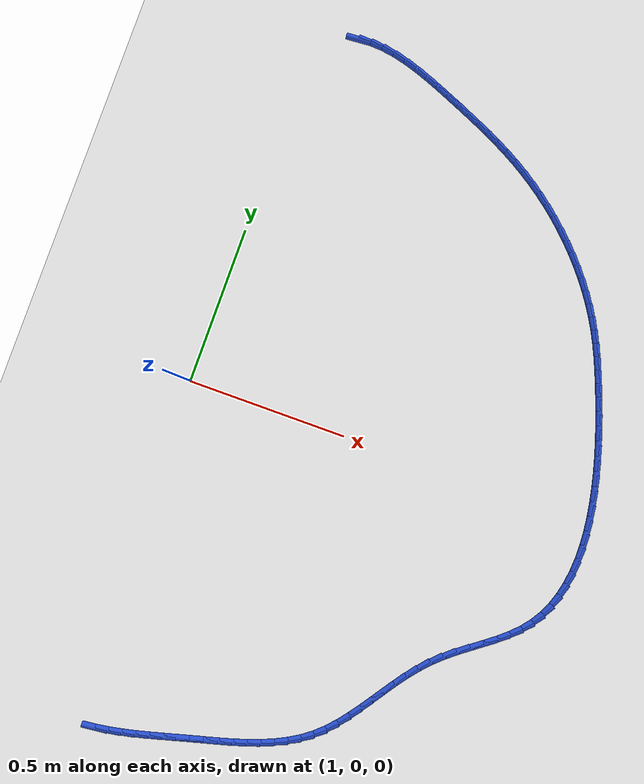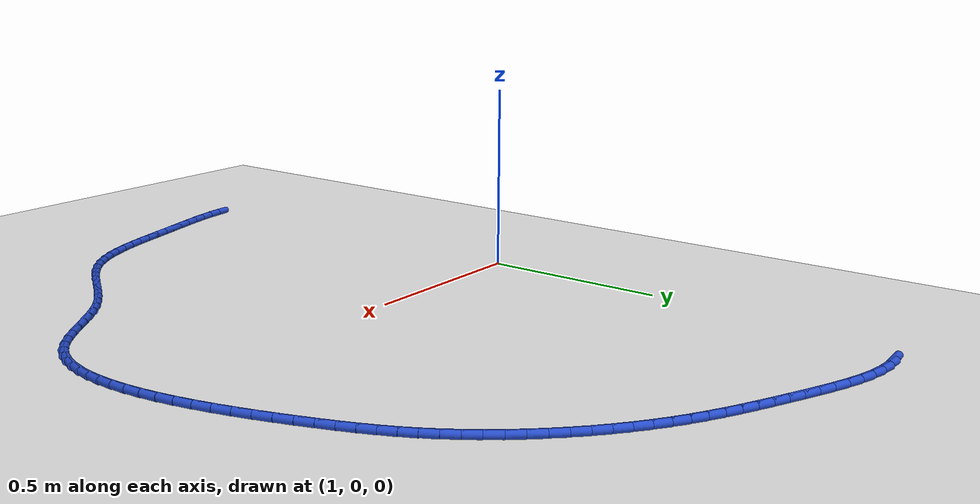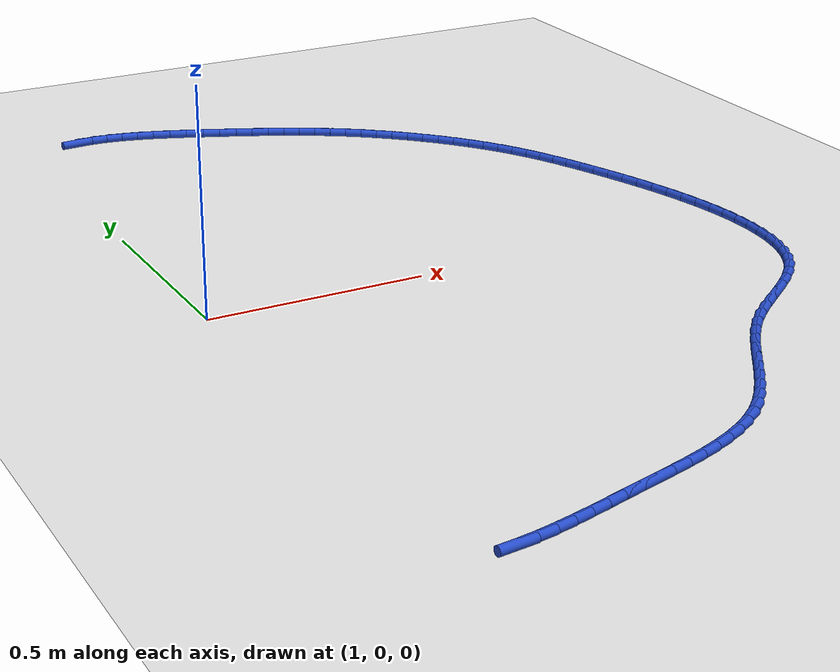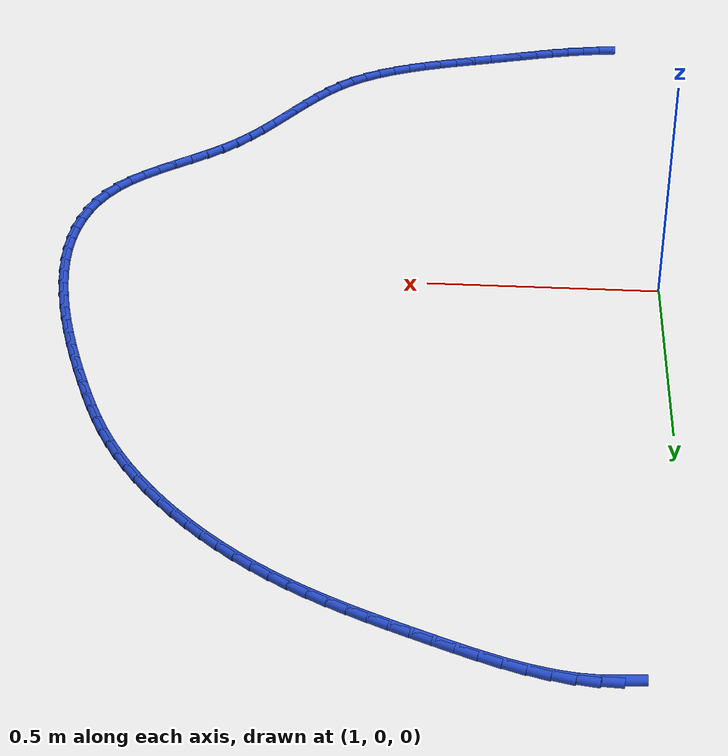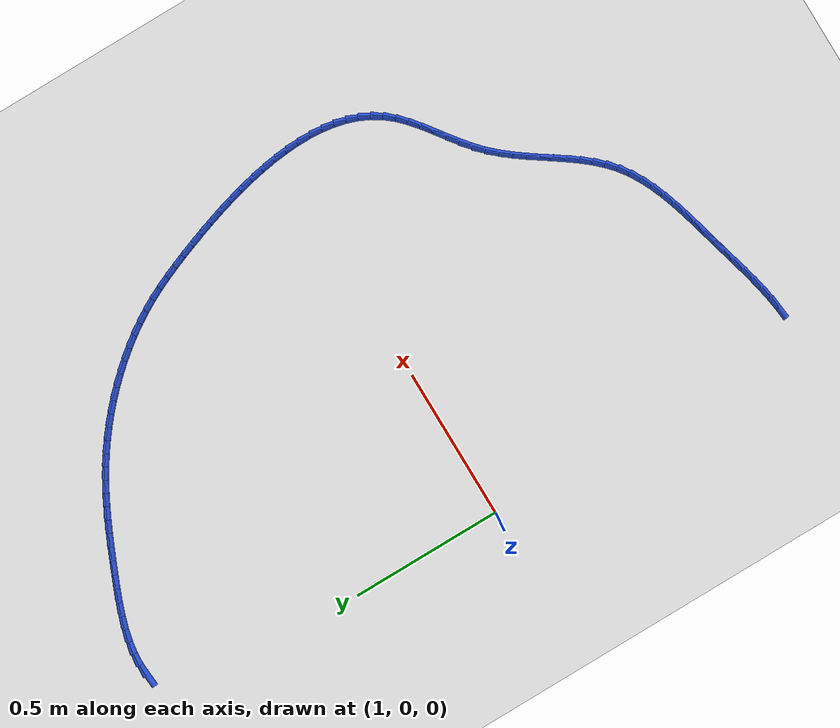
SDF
<sdf version="1.6">
 <world name="default">
  <model name="ground_plane">
   <static>1</static>
   <link name="link">
    <collision name="collision">
     <geometry><plane><normal>0 0 1</normal><size>100 100</size></plane></geometry>
     <surface><friction><ode><mu>100</mu><mu2>50</mu2></ode></friction></surface>
    </collision>
    <visual name="visual">
     <cast_shadows>0</cast_shadows>
     <geometry><plane><normal>0 0 1</normal><size>100 100</size></plane></geometry>
     <material>
      <script><uri>file://media/materials/scripts/gazebo.material</uri><name>Gazebo/WhiteGlow</name></script>
     </material>
    </visual>
   </link>
  </model>
  <model name="line">
   <link name="link_44">
    <pose>1.127255780302199 1.1821096388863792 0.01 0 1.57 0.06854633437691574</pose>
    <collision name="collision">
     <geometry><cylinder><radius>0.01</radius><length>0.08</length></cylinder></geometry>
    </collision>
    <visual name="visual">
     <material>
      <script><name>Gazebo/Blue</name><uri>file://media/materials/scripts/gazebo.material</uri></script>
     </material>
     <geometry><cylinder><radius>0.01</radius><length>0.08</length></cylinder></geometry>
    </visual>
   </link>
   <link name="link_45">
    <pose>1.1661969894721655 1.18478310452521 0.01 0 1.57 -0.05509741451226116</pose>
    <collision name="collision">
     <geometry><cylinder><radius>0.01</radius><length>0.08</length></cylinder></geometry>
    </collision>
    <visual name="visual">
     <material>
      <script><name>Gazebo/Blue</name><uri>file://media/materials/scripts/gazebo.material</uri></script>
     </material>
     <geometry><cylinder><radius>0.01</radius><length>0.08</length></cylinder></geometry>
    </visual>
   </link>
   <link name="link_46">
    <pose>1.20599255363776 1.182588250389758 0.01 0 1.57 -0.15627035638043646</pose>
    <collision name="collision">
     <geometry><cylinder><radius>0.01</radius><length>0.08</length></cylinder></geometry>
    </collision>
    <visual name="visual">
     <material>
      <script><name>Gazebo/Blue</name><uri>file://media/materials/scripts/gazebo.material</uri></script>
     </material>
     <geometry><cylinder><radius>0.01</radius><length>0.08</length></cylinder></geometry>
    </visual>
   </link>
   <link name="link_47">
    <pose>1.2464213542993945 1.1762184919565535 0.01 0 1.57 -0.23668898038604896</pose>
    <collision name="collision">
     <geometry><cylinder><radius>0.01</radius><length>0.08</length></cylinder></geometry>
    </collision>
    <visual name="visual">
     <material>
      <script><name>Gazebo/Blue</name><uri>file://media/materials/scripts/gazebo.material</uri></script>
     </material>
     <geometry><cylinder><radius>0.01</radius><length>0.08</length></cylinder></geometry>
    </visual>
   </link>
   <link name="link_48">
    <pose>1.2872622729574785 1.1663672447021258 0.01 0 1.57 -0.29881315057976904</pose>
    <collision name="collision">
     <geometry><cylinder><radius>0.01</radius><length>0.08</length></cylinder></geometry>
    </collision>
    <visual name="visual">
     <material>
      <script><name>Gazebo/Blue</name><uri>file://media/materials/scripts/gazebo.material</uri></script>
     </material>
     <geometry><cylinder><radius>0.01</radius><length>0.08</length></cylinder></geometry>
    </visual>
   </link>
   <link name="link_49">
    <pose>1.328294191112424 1.1537279241030047 0.01 0 1.57 -0.34497964643754225</pose>
    <collision name="collision">
     <geometry><cylinder><radius>0.01</radius><length>0.08</length></cylinder></geometry>
    </collision>
    <visual name="visual">
     <material>
      <script><name>Gazebo/Blue</name><uri>file://media/materials/scripts/gazebo.material</uri></script>
     </material>
     <geometry><cylinder><radius>0.01</radius><length>0.08</length></cylinder></geometry>
    </visual>
   </link>
   <link name="link_50">
    <pose>1.3692959902646415 1.1389939456357197 0.01 0 1.57 -0.37701089247184477</pose>
    <collision name="collision">
     <geometry><cylinder><radius>0.01</radius><length>0.08</length></cylinder></geometry>
    </collision>
    <visual name="visual">
     <material>
      <script><name>Gazebo/Blue</name><uri>file://media/materials/scripts/gazebo.material</uri></script>
     </material>
     <geometry><cylinder><radius>0.01</radius><length>0.08</length></cylinder></geometry>
    </visual>
   </link>
   <link name="link_51">
    <pose>1.4100465519145418 1.1228587247768016 0.01 0 1.57 -0.396069491498876</pose>
    <collision name="collision">
     <geometry><cylinder><radius>0.01</radius><length>0.08</length></cylinder></geometry>
    </collision>
    <visual name="visual">
     <material>
      <script><name>Gazebo/Blue</name><uri>file://media/materials/scripts/gazebo.material</uri></script>
     </material>
     <geometry><cylinder><radius>0.01</radius><length>0.08</length></cylinder></geometry>
    </visual>
   </link>
   <link name="link_52">
    <pose>1.4503247575625364 1.1060156770027791 0.01 0 1.57 -0.4037262229836692</pose>
    <collision name="collision">
     <geometry><cylinder><radius>0.01</radius><length>0.08</length></cylinder></geometry>
    </collision>
    <visual name="visual">
     <material>
      <script><name>Gazebo/Blue</name><uri>file://media/materials/scripts/gazebo.material</uri></script>
     </material>
     <geometry><cylinder><radius>0.01</radius><length>0.08</length></cylinder></geometry>
    </visual>
   </link>
   <link name="link_53">
    <pose>1.4899256579240476 1.0890984705465996 0.01 0 1.57 -0.41035904107302573</pose>
    <collision name="collision">
     <geometry><cylinder><radius>0.01</radius><length>0.08</length></cylinder></geometry>
    </collision>
    <visual name="visual">
     <material>
      <script><name>Gazebo/Blue</name><uri>file://media/materials/scripts/gazebo.material</uri></script>
     </material>
     <geometry><cylinder><radius>0.01</radius><length>0.08</length></cylinder></geometry>
    </visual>
   </link>
   <link name="link_54">
    <pose>1.5287937378391696 1.0721885961211908 0.01 0 1.57 -0.42170604757677266</pose>
    <collision name="collision">
     <geometry><cylinder><radius>0.01</radius><length>0.08</length></cylinder></geometry>
    </collision>
    <visual name="visual">
     <material>
      <script><name>Gazebo/Blue</name><uri>file://media/materials/scripts/gazebo.material</uri></script>
     </material>
     <geometry><cylinder><radius>0.01</radius><length>0.08</length></cylinder></geometry>
    </visual>
   </link>
   <link name="link_55">
    <pose>1.566954276156908 1.0550690006124168 0.01 0 1.57 -0.4379204622202308</pose>
    <collision name="collision">
     <geometry><cylinder><radius>0.01</radius><length>0.08</length></cylinder></geometry>
    </collision>
    <visual name="visual">
     <material>
      <script><name>Gazebo/Blue</name><uri>file://media/materials/scripts/gazebo.material</uri></script>
     </material>
     <geometry><cylinder><radius>0.01</radius><length>0.08</length></cylinder></geometry>
    </visual>
   </link>
   <link name="link_56">
    <pose>1.6044333433577622 1.037519705730133 0.01 0 1.57 -0.459012491445624</pose>
    <collision name="collision">
     <geometry><cylinder><radius>0.01</radius><length>0.08</length></cylinder></geometry>
    </collision>
    <visual name="visual">
     <material>
      <script><name>Gazebo/Blue</name><uri>file://media/materials/scripts/gazebo.material</uri></script>
     </material>
     <geometry><cylinder><radius>0.01</radius><length>0.08</length></cylinder></geometry>
    </visual>
   </link>
   <link name="link_57">
    <pose>1.6412570099222341 1.0193207331841945 0.01 0 1.57 -0.4848884323864052</pose>
    <collision name="collision">
     <geometry><cylinder><radius>0.01</radius><length>0.08</length></cylinder></geometry>
    </collision>
    <visual name="visual">
     <material>
      <script><name>Gazebo/Blue</name><uri>file://media/materials/scripts/gazebo.material</uri></script>
     </material>
     <geometry><cylinder><radius>0.01</radius><length>0.08</length></cylinder></geometry>
    </visual>
   </link>
   <link name="link_58">
    <pose>1.6774513463308263 1.000252104684457 0.01 0 1.57 -0.5153360059701494</pose>
    <collision name="collision">
     <geometry><cylinder><radius>0.01</radius><length>0.08</length></cylinder></geometry>
    </collision>
    <visual name="visual">
     <material>
      <script><name>Gazebo/Blue</name><uri>file://media/materials/scripts/gazebo.material</uri></script>
     </material>
     <geometry><cylinder><radius>0.01</radius><length>0.08</length></cylinder></geometry>
    </visual>
   </link>
   <link name="link_59">
    <pose>1.713042423064037 0.9800938419407756 0.01 0 1.57 -0.550014079441732</pose>
    <collision name="collision">
     <geometry><cylinder><radius>0.01</radius><length>0.08</length></cylinder></geometry>
    </collision>
    <visual name="visual">
     <material>
      <script><name>Gazebo/Blue</name><uri>file://media/materials/scripts/gazebo.material</uri></script>
     </material>
     <geometry><cylinder><radius>0.01</radius><length>0.08</length></cylinder></geometry>
    </visual>
   </link>
   <link name="link_60">
    <pose>1.7480563106023688 0.9586259666630057 0.01 0 1.57 -0.5879182547053827</pose>
    <collision name="collision">
     <geometry><cylinder><radius>0.01</radius><length>0.08</length></cylinder></geometry>
    </collision>
    <visual name="visual">
     <material>
      <script><name>Gazebo/Blue</name><uri>file://media/materials/scripts/gazebo.material</uri></script>
     </material>
     <geometry><cylinder><radius>0.01</radius><length>0.08</length></cylinder></geometry>
    </visual>
   </link>
   <link name="link_61">
    <pose>1.7825024693280276 0.9356660574340228 0.01 0 1.57 -0.6260137774116261</pose>
    <collision name="collision">
     <geometry><cylinder><radius>0.01</radius><length>0.08</length></cylinder></geometry>
    </collision>
    <visual name="visual">
     <material>
      <script><name>Gazebo/Blue</name><uri>file://media/materials/scripts/gazebo.material</uri></script>
     </material>
     <geometry><cylinder><radius>0.01</radius><length>0.08</length></cylinder></geometry>
    </visual>
   </link>
   <link name="link_62">
    <pose>1.8163042102024922 0.9112264841496295 0.01 0 1.57 -0.663605238005424</pose>
    <collision name="collision">
     <geometry><cylinder><radius>0.01</radius><length>0.08</length></cylinder></geometry>
    </collision>
    <visual name="visual">
     <material>
      <script><name>Gazebo/Blue</name><uri>file://media/materials/scripts/gazebo.material</uri></script>
     </material>
     <geometry><cylinder><radius>0.01</radius><length>0.08</length></cylinder></geometry>
    </visual>
   </link>
   <link name="link_63">
    <pose>1.84935699972535 0.8853825754492208 0.01 0 1.57 -0.7009402538940767</pose>
    <collision name="collision">
     <geometry><cylinder><radius>0.01</radius><length>0.08</length></cylinder></geometry>
    </collision>
    <visual name="visual">
     <material>
      <script><name>Gazebo/Blue</name><uri>file://media/materials/scripts/gazebo.material</uri></script>
     </material>
     <geometry><cylinder><radius>0.01</radius><length>0.08</length></cylinder></geometry>
    </visual>
   </link>
   <link name="link_64">
    <pose>1.881556290441462 0.8582096915250351 0.01 0 1.57 -0.7382594551700933</pose>
    <collision name="collision">
     <geometry><cylinder><radius>0.01</radius><length>0.08</length></cylinder></geometry>
    </collision>
    <visual name="visual">
     <material>
      <script><name>Gazebo/Blue</name><uri>file://media/materials/scripts/gazebo.material</uri></script>
     </material>
     <geometry><cylinder><radius>0.01</radius><length>0.08</length></cylinder></geometry>
    </visual>
   </link>
   <link name="link_65">
    <pose>1.9127975348956903 0.8297831925693105 0.01 0 1.57 -0.7757988553789479</pose>
    <collision name="collision">
     <geometry><cylinder><radius>0.01</radius><length>0.08</length></cylinder></geometry>
    </collision>
    <visual name="visual">
     <material>
      <script><name>Gazebo/Blue</name><uri>file://media/materials/scripts/gazebo.material</uri></script>
     </material>
     <geometry><cylinder><radius>0.01</radius><length>0.08</length></cylinder></geometry>
    </visual>
   </link>
   <link name="link_66">
    <pose>1.9429761856328966 0.8001784387742845 0.01 0 1.57 -0.8137924522642171</pose>
    <collision name="collision">
     <geometry><cylinder><radius>0.01</radius><length>0.08</length></cylinder></geometry>
    </collision>
    <visual name="visual">
     <material>
      <script><name>Gazebo/Blue</name><uri>file://media/materials/scripts/gazebo.material</uri></script>
     </material>
     <geometry><cylinder><radius>0.01</radius><length>0.08</length></cylinder></geometry>
    </visual>
   </link>
   <link name="link_67">
    <pose>1.9719876951979434 0.7694707903321962 0.01 0 1.57 -0.8524745462738602</pose>
    <collision name="collision">
     <geometry><cylinder><radius>0.01</radius><length>0.08</length></cylinder></geometry>
    </collision>
    <visual name="visual">
     <material>
      <script><name>Gazebo/Blue</name><uri>file://media/materials/scripts/gazebo.material</uri></script>
     </material>
     <geometry><cylinder><radius>0.01</radius><length>0.08</length></cylinder></geometry>
    </visual>
   </link>
   <link name="link_68">
    <pose>1.9997275161356913 0.7377356074352831 0.01 0 1.57 -0.8920816944253648</pose>
    <collision name="collision">
     <geometry><cylinder><radius>0.01</radius><length>0.08</length></cylinder></geometry>
    </collision>
    <visual name="visual">
     <material>
      <script><name>Gazebo/Blue</name><uri>file://media/materials/scripts/gazebo.material</uri></script>
     </material>
     <geometry><cylinder><radius>0.01</radius><length>0.08</length></cylinder></geometry>
    </visual>
   </link>
   <link name="link_69">
    <pose>2.026091100991002 0.7050482502757833 0.01 0 1.57 -0.9328541848154398</pose>
    <collision name="collision">
     <geometry><cylinder><radius>0.01</radius><length>0.08</length></cylinder></geometry>
    </collision>
    <visual name="visual">
     <material>
      <script><name>Gazebo/Blue</name><uri>file://media/materials/scripts/gazebo.material</uri></script>
     </material>
     <geometry><cylinder><radius>0.01</radius><length>0.08</length></cylinder></geometry>
    </visual>
   </link>
   <link name="link_70">
    <pose>2.0509739023087374 0.6714840790459354 0.01 0 1.57 -0.975036869855163</pose>
    <collision name="collision">
     <geometry><cylinder><radius>0.01</radius><length>0.08</length></cylinder></geometry>
    </collision>
    <visual name="visual">
     <material>
      <script><name>Gazebo/Blue</name><uri>file://media/materials/scripts/gazebo.material</uri></script>
     </material>
     <geometry><cylinder><radius>0.01</radius><length>0.08</length></cylinder></geometry>
    </visual>
   </link>
   <link name="link_71">
    <pose>2.07427137263376 0.637118453937977 0.01 0 1.57 -1.0188791342013779</pose>
    <collision name="collision">
     <geometry><cylinder><radius>0.01</radius><length>0.08</length></cylinder></geometry>
    </collision>
    <visual name="visual">
     <material>
      <script><name>Gazebo/Blue</name><uri>file://media/materials/scripts/gazebo.material</uri></script>
     </material>
     <geometry><cylinder><radius>0.01</radius><length>0.08</length></cylinder></geometry>
    </visual>
   </link>
   <link name="link_72">
    <pose>2.095878964510931 0.6020267351441467 0.01 0 1.57 -1.0643881370935382</pose>
    <collision name="collision">
     <geometry><cylinder><radius>0.01</radius><length>0.08</length></cylinder></geometry>
    </collision>
    <visual name="visual">
     <material>
      <script><name>Gazebo/Blue</name><uri>file://media/materials/scripts/gazebo.material</uri></script>
     </material>
     <geometry><cylinder><radius>0.01</radius><length>0.08</length></cylinder></geometry>
    </visual>
   </link>
   <link name="link_73">
    <pose>2.115708238392594 0.5662759309592335 0.01 0 1.57 -1.107677617199653</pose>
    <collision name="collision">
     <geometry><cylinder><radius>0.01</radius><length>0.08</length></cylinder></geometry>
    </collision>
    <visual name="visual">
     <material>
      <script><name>Gazebo/Blue</name><uri>file://media/materials/scripts/gazebo.material</uri></script>
     </material>
     <geometry><cylinder><radius>0.01</radius><length>0.08</length></cylinder></geometry>
    </visual>
   </link>
   <link name="link_74">
    <pose>2.1339202553462244 0.5298036844235112 0.01 0 1.57 -1.1448025772364245</pose>
    <collision name="collision">
     <geometry><cylinder><radius>0.01</radius><length>0.08</length></cylinder></geometry>
    </collision>
    <visual name="visual">
     <material>
      <script><name>Gazebo/Blue</name><uri>file://media/materials/scripts/gazebo.material</uri></script>
     </material>
     <geometry><cylinder><radius>0.01</radius><length>0.08</length></cylinder></geometry>
    </visual>
   </link>
   <link name="link_75">
    <pose>2.1508725733797767 0.49244575555503317 0.01 0 1.57 -1.1748727489428332</pose>
    <collision name="collision">
     <geometry><cylinder><radius>0.01</radius><length>0.08</length></cylinder></geometry>
    </collision>
    <visual name="visual">
     <material>
      <script><name>Gazebo/Blue</name><uri>file://media/materials/scripts/gazebo.material</uri></script>
     </material>
     <geometry><cylinder><radius>0.01</radius><length>0.08</length></cylinder></geometry>
    </visual>
   </link>
   <link name="link_76">
    <pose>2.1669280677893346 0.4540351473753115 0.01 0 1.57 -1.1975013346610845</pose>
    <collision name="collision">
     <geometry><cylinder><radius>0.01</radius><length>0.08</length></cylinder></geometry>
    </collision>
    <visual name="visual">
     <material>
      <script><name>Gazebo/Blue</name><uri>file://media/materials/scripts/gazebo.material</uri></script>
     </material>
     <geometry><cylinder><radius>0.01</radius><length>0.08</length></cylinder></geometry>
    </visual>
   </link>
   <link name="link_77">
    <pose>2.1824496138709852 0.4144048629058583 0.01 0 1.57 -1.2133981890479508</pose>
    <collision name="collision">
     <geometry><cylinder><radius>0.01</radius><length>0.08</length></cylinder></geometry>
    </collision>
    <visual name="visual">
     <material>
      <script><name>Gazebo/Blue</name><uri>file://media/materials/scripts/gazebo.material</uri></script>
     </material>
     <geometry><cylinder><radius>0.01</radius><length>0.08</length></cylinder></geometry>
    </visual>
   </link>
   <link name="link_78">
    <pose>2.197756053242841 0.3734166621847882 0.01 0 1.57 -1.2286831762555745</pose>
    <collision name="collision">
     <geometry><cylinder><radius>0.01</radius><length>0.08</length></cylinder></geometry>
    </collision>
    <visual name="visual">
     <material>
      <script><name>Gazebo/Blue</name><uri>file://media/materials/scripts/gazebo.material</uri></script>
     </material>
     <geometry><cylinder><radius>0.01</radius><length>0.08</length></cylinder></geometry>
    </visual>
   </link>
   <link name="link_79">
    <pose>2.2128003248240633 0.3311712648482562 0.01 0 1.57 -1.246429659381454</pose>
    <collision name="collision">
     <geometry><cylinder><radius>0.01</radius><length>0.08</length></cylinder></geometry>
    </collision>
    <visual name="visual">
     <material>
      <script><name>Gazebo/Blue</name><uri>file://media/materials/scripts/gazebo.material</uri></script>
     </material>
     <geometry><cylinder><radius>0.01</radius><length>0.08</length></cylinder></geometry>
    </visual>
   </link>
   <link name="link_80">
    <pose>2.227354077494907 0.2878877853815119 0.01 0 1.57 -1.2668410442701115</pose>
    <collision name="collision">
     <geometry><cylinder><radius>0.01</radius><length>0.08</length></cylinder></geometry>
    </collision>
    <visual name="visual">
     <material>
      <script><name>Gazebo/Blue</name><uri>file://media/materials/scripts/gazebo.material</uri></script>
     </material>
     <geometry><cylinder><radius>0.01</radius><length>0.08</length></cylinder></geometry>
    </visual>
   </link>
   <link name="link_81">
    <pose>2.241187661596913 0.24378618630478877 0.01 0 1.57 -1.2901732937841766</pose>
    <collision name="collision">
     <geometry><cylinder><radius>0.01</radius><length>0.08</length></cylinder></geometry>
    </collision>
    <visual name="visual">
     <material>
      <script><name>Gazebo/Blue</name><uri>file://media/materials/scripts/gazebo.material</uri></script>
     </material>
     <geometry><cylinder><radius>0.01</radius><length>0.08</length></cylinder></geometry>
    </visual>
   </link>
   <link name="link_82">
    <pose>2.2540714274716205 0.19908643013832011 0.01 0 1.57 -1.316760122924247</pose>
    <collision name="collision">
     <geometry><cylinder><radius>0.01</radius><length>0.08</length></cylinder></geometry>
    </collision>
    <visual name="visual">
     <material>
      <script><name>Gazebo/Blue</name><uri>file://media/materials/scripts/gazebo.material</uri></script>
     </material>
     <geometry><cylinder><radius>0.01</radius><length>0.08</length></cylinder></geometry>
    </visual>
   </link>
   <link name="link_83">
    <pose>2.26577572546057 0.15400847940234055 0.01 0 1.57 -1.3470206292120859</pose>
    <collision name="collision">
     <geometry><cylinder><radius>0.01</radius><length>0.08</length></cylinder></geometry>
    </collision>
    <visual name="visual">
     <material>
      <script><name>Gazebo/Blue</name><uri>file://media/materials/scripts/gazebo.material</uri></script>
     </material>
     <geometry><cylinder><radius>0.01</radius><length>0.08</length></cylinder></geometry>
    </visual>
   </link>
   <link name="link_84">
    <pose>2.2760709059053004 0.10877229661708288 0.01 0 1.57 -1.3814694819452868</pose>
    <collision name="collision">
     <geometry><cylinder><radius>0.01</radius><length>0.08</length></cylinder></geometry>
    </collision>
    <visual name="visual">
     <material>
      <script><name>Gazebo/Blue</name><uri>file://media/materials/scripts/gazebo.material</uri></script>
     </material>
     <geometry><cylinder><radius>0.01</radius><length>0.08</length></cylinder></geometry>
    </visual>
   </link>
   <link name="link_85">
    <pose>2.284727319147352 0.06359784430278183 0.01 0 1.57 -1.4207283933870976</pose>
    <collision name="collision">
     <geometry><cylinder><radius>0.01</radius><length>0.08</length></cylinder></geometry>
    </collision>
    <visual name="visual">
     <material>
      <script><name>Gazebo/Blue</name><uri>file://media/materials/scripts/gazebo.material</uri></script>
     </material>
     <geometry><cylinder><radius>0.01</radius><length>0.08</length></cylinder></geometry>
    </visual>
   </link>
   <link name="link_86">
    <pose>2.291515315528264 0.01870508497967059 0.01 0 1.57 -1.4655365836802776</pose>
    <collision name="collision">
     <geometry><cylinder><radius>0.01</radius><length>0.08</length></cylinder></geometry>
    </collision>
    <visual name="visual">
     <material>
      <script><name>Gazebo/Blue</name><uri>file://media/materials/scripts/gazebo.material</uri></script>
     </material>
     <geometry><cylinder><radius>0.01</radius><length>0.08</length></cylinder></geometry>
    </visual>
   </link>
   <link name="link_87">
    <pose>2.2962052453895754 -0.025686018832016953 0.01 0 1.57 -1.5167559897025613</pose>
    <collision name="collision">
     <geometry><cylinder><radius>0.01</radius><length>0.08</length></cylinder></geometry>
    </collision>
    <visual name="visual">
     <material>
      <script><name>Gazebo/Blue</name><uri>file://media/materials/scripts/gazebo.material</uri></script>
     </material>
     <geometry><cylinder><radius>0.01</radius><length>0.08</length></cylinder></geometry>
    </visual>
   </link>
   <link name="link_88">
    <pose>2.2985674590728284 -0.06935550461204718 0.01 0 1.57 1.5662290353431698</pose>
    <collision name="collision">
     <geometry><cylinder><radius>0.01</radius><length>0.08</length></cylinder></geometry>
    </collision>
    <visual name="visual">
     <material>
      <script><name>Gazebo/Blue</name><uri>file://media/materials/scripts/gazebo.material</uri></script>
     </material>
     <geometry><cylinder><radius>0.01</radius><length>0.08</length></cylinder></geometry>
    </visual>
   </link>
   <link name="link_89">
    <pose>2.29837230691956 -0.11208340984018704 0.01 0 1.57 1.499174310157138</pose>
    <collision name="collision">
     <geometry><cylinder><radius>0.01</radius><length>0.08</length></cylinder></geometry>
    </collision>
    <visual name="visual">
     <material>
      <script><name>Gazebo/Blue</name><uri>file://media/materials/scripts/gazebo.material</uri></script>
     </material>
     <geometry><cylinder><radius>0.01</radius><length>0.08</length></cylinder></geometry>
    </visual>
   </link>
   <link name="link_90">
    <pose>2.295390139271312 -0.1536497719962012 0.01 0 1.57 1.4226096991832982</pose>
    <collision name="collision">
     <geometry><cylinder><radius>0.01</radius><length>0.08</length></cylinder></geometry>
    </collision>
    <visual name="visual">
     <material>
      <script><name>Gazebo/Blue</name><uri>file://media/materials/scripts/gazebo.material</uri></script>
     </material>
     <geometry><cylinder><radius>0.01</radius><length>0.08</length></cylinder></geometry>
    </visual>
   </link>
   <link name="link_91">
    <pose>2.289391306469623 -0.19383462855985673 0.01 0 1.57 1.335615679499856</pose>
    <collision name="collision">
     <geometry><cylinder><radius>0.01</radius><length>0.08</length></cylinder></geometry>
    </collision>
    <visual name="visual">
     <material>
      <script><name>Gazebo/Blue</name><uri>file://media/materials/scripts/gazebo.material</uri></script>
     </material>
     <geometry><cylinder><radius>0.01</radius><length>0.08</length></cylinder></geometry>
    </visual>
   </link>
   <link name="link_92">
    <pose>2.2801461588560326 -0.23241801701091988 0.01 0 1.57 1.2376535916819298</pose>
    <collision name="collision">
     <geometry><cylinder><radius>0.01</radius><length>0.08</length></cylinder></geometry>
    </collision>
    <visual name="visual">
     <material>
      <script><name>Gazebo/Blue</name><uri>file://media/materials/scripts/gazebo.material</uri></script>
     </material>
     <geometry><cylinder><radius>0.01</radius><length>0.08</length></cylinder></geometry>
    </visual>
   </link>
   <link name="link_93">
    <pose>2.267425046772082 -0.269179974829157 0.01 0 1.57 1.1288893103933288</pose>
    <collision name="collision">
     <geometry><cylinder><radius>0.01</radius><length>0.08</length></cylinder></geometry>
    </collision>
    <visual name="visual">
     <material>
      <script><name>Gazebo/Blue</name><uri>file://media/materials/scripts/gazebo.material</uri></script>
     </material>
     <geometry><cylinder><radius>0.01</radius><length>0.08</length></cylinder></geometry>
    </visual>
   </link>
   <link name="link_94">
    <pose>2.250998320559309 -0.3039005394943348 0.01 0 1.57 1.0105375324211299</pose>
    <collision name="collision">
     <geometry><cylinder><radius>0.01</radius><length>0.08</length></cylinder></geometry>
    </collision>
    <visual name="visual">
     <material>
      <script><name>Gazebo/Blue</name><uri>file://media/materials/scripts/gazebo.material</uri></script>
     </material>
     <geometry><cylinder><radius>0.01</radius><length>0.08</length></cylinder></geometry>
    </visual>
   </link>
   <link name="link_95">
    <pose>2.230636330559254 -0.3363597484862183 0.01 0 1.57 0.8858774758537059</pose>
    <collision name="collision">
     <geometry><cylinder><radius>0.01</radius><length>0.08</length></cylinder></geometry>
    </collision>
    <visual name="visual">
     <material>
      <script><name>Gazebo/Blue</name><uri>file://media/materials/scripts/gazebo.material</uri></script>
     </material>
     <geometry><cylinder><radius>0.01</radius><length>0.08</length></cylinder></geometry>
    </visual>
   </link>
   <link name="link_96">
    <pose>2.206134001342033 -0.36635662392280194 0.01 0 1.57 0.7761189236618113</pose>
    <collision name="collision">
     <geometry><cylinder><radius>0.01</radius><length>0.08</length></cylinder></geometry>
    </collision>
    <visual name="visual">
     <material>
      <script><name>Gazebo/Blue</name><uri>file://media/materials/scripts/gazebo.material</uri></script>
     </material>
     <geometry><cylinder><radius>0.01</radius><length>0.08</length></cylinder></geometry>
    </visual>
   </link>
   <link name="link_97">
    <pose>2.1778470500606617 -0.39412342407735085 0.01 0 1.57 0.699187016069193</pose>
    <collision name="collision">
     <geometry><cylinder><radius>0.01</radius><length>0.08</length></cylinder></geometry>
    </collision>
    <visual name="visual">
     <material>
      <script><name>Gazebo/Blue</name><uri>file://media/materials/scripts/gazebo.material</uri></script>
     </material>
     <geometry><cylinder><radius>0.01</radius><length>0.08</length></cylinder></geometry>
    </visual>
   </link>
   <link name="link_98">
    <pose>2.1466895447639014 -0.4203237570710795 0.01 0 1.57 0.6530761108140917</pose>
    <collision name="collision">
     <geometry><cylinder><radius>0.01</radius><length>0.08</length></cylinder></geometry>
    </collision>
    <visual name="visual">
     <material>
      <script><name>Gazebo/Blue</name><uri>file://media/materials/scripts/gazebo.material</uri></script>
     </material>
     <geometry><cylinder><radius>0.01</radius><length>0.08</length></cylinder></geometry>
    </visual>
   </link>
   <link name="link_99">
    <pose>2.113599639388741 -0.4456398383997135 0.01 0 1.57 0.6350154631159598</pose>
    <collision name="collision">
     <geometry><cylinder><radius>0.01</radius><length>0.08</length></cylinder></geometry>
    </collision>
    <visual name="visual">
     <material>
      <script><name>Gazebo/Blue</name><uri>file://media/materials/scripts/gazebo.material</uri></script>
     </material>
     <geometry><cylinder><radius>0.01</radius><length>0.08</length></cylinder></geometry>
    </visual>
   </link>
   <link name="link_100">
    <pose>2.0795154878721736 -0.47075388355897707 0.01 0 1.57 0.6432956505093932</pose>
    <collision name="collision">
     <geometry><cylinder><radius>0.01</radius><length>0.08</length></cylinder></geometry>
    </collision>
    <visual name="visual">
     <material>
      <script><name>Gazebo/Blue</name><uri>file://media/materials/scripts/gazebo.material</uri></script>
     </material>
     <geometry><cylinder><radius>0.01</radius><length>0.08</length></cylinder></geometry>
    </visual>
   </link>
   <link name="link_101">
    <pose>2.045375244151187 -0.49634810804459584 0.01 0 1.57 0.6774863464123123</pose>
    <collision name="collision">
     <geometry><cylinder><radius>0.01</radius><length>0.08</length></cylinder></geometry>
    </collision>
    <visual name="visual">
     <material>
      <script><name>Gazebo/Blue</name><uri>file://media/materials/scripts/gazebo.material</uri></script>
     </material>
     <geometry><cylinder><radius>0.01</radius><length>0.08</length></cylinder></geometry>
    </visual>
   </link>
   <link name="link_102">
    <pose>2.012117062162774 -0.5231047273522951 0.01 0 1.57 0.7381715541075973</pose>
    <collision name="collision">
     <geometry><cylinder><radius>0.01</radius><length>0.08</length></cylinder></geometry>
    </collision>
    <visual name="visual">
     <material>
      <script><name>Gazebo/Blue</name><uri>file://media/materials/scripts/gazebo.material</uri></script>
     </material>
     <geometry><cylinder><radius>0.01</radius><length>0.08</length></cylinder></geometry>
    </visual>
   </link>
   <link name="link_103">
    <pose>1.9806786504457075 -0.5517055783656134 0.01 0 1.57 0.8156369058428705</pose>
    <collision name="collision">
     <geometry><cylinder><radius>0.01</radius><length>0.08</length></cylinder></geometry>
    </collision>
    <visual name="visual">
     <material>
      <script><name>Gazebo/Blue</name><uri>file://media/materials/scripts/gazebo.material</uri></script>
     </material>
     <geometry><cylinder><radius>0.01</radius><length>0.08</length></cylinder></geometry>
    </visual>
   </link>
   <link name="link_104">
    <pose>1.9516542877601062 -0.5825405643800005 0.01 0 1.57 0.8802700006548866</pose>
    <collision name="collision">
     <geometry><cylinder><radius>0.01</radius><length>0.08</length></cylinder></geometry>
    </collision>
    <visual name="visual">
     <material>
      <script><name>Gazebo/Blue</name><uri>file://media/materials/scripts/gazebo.material</uri></script>
     </material>
     <geometry><cylinder><radius>0.01</radius><length>0.08</length></cylinder></geometry>
    </visual>
   </link>
   <link name="link_105">
    <pose>1.9246816093547967 -0.6151863907968008 0.01 0 1.57 0.9267489309613601</pose>
    <collision name="collision">
     <geometry><cylinder><radius>0.01</radius><length>0.08</length></cylinder></geometry>
    </collision>
    <visual name="visual">
     <material>
      <script><name>Gazebo/Blue</name><uri>file://media/materials/scripts/gazebo.material</uri></script>
     </material>
     <geometry><cylinder><radius>0.01</radius><length>0.08</length></cylinder></geometry>
    </visual>
   </link>
   <link name="link_106">
    <pose>1.8992329951305162 -0.6490792871771274 0.01 0 1.57 0.9552567037095948</pose>
    <collision name="collision">
     <geometry><cylinder><radius>0.01</radius><length>0.08</length></cylinder></geometry>
    </collision>
    <visual name="visual">
     <material>
      <script><name>Gazebo/Blue</name><uri>file://media/materials/scripts/gazebo.material</uri></script>
     </material>
     <geometry><cylinder><radius>0.01</radius><length>0.08</length></cylinder></geometry>
    </visual>
   </link>
   <link name="link_107">
    <pose>1.8747808249880022 -0.6836554830820916 0.01 0 1.57 0.965968455314515</pose>
    <collision name="collision">
     <geometry><cylinder><radius>0.01</radius><length>0.08</length></cylinder></geometry>
    </collision>
    <visual name="visual">
     <material>
      <script><name>Gazebo/Blue</name><uri>file://media/materials/scripts/gazebo.material</uri></script>
     </material>
     <geometry><cylinder><radius>0.01</radius><length>0.08</length></cylinder></geometry>
    </visual>
   </link>
   <link name="link_108">
    <pose>1.8507974788279926 -0.7183512080728055 0.01 0 1.57 0.9587762664548918</pose>
    <collision name="collision">
     <geometry><cylinder><radius>0.01</radius><length>0.08</length></cylinder></geometry>
    </collision>
    <visual name="visual">
     <material>
      <script><name>Gazebo/Blue</name><uri>file://media/materials/scripts/gazebo.material</uri></script>
     </material>
     <geometry><cylinder><radius>0.01</radius><length>0.08</length></cylinder></geometry>
    </visual>
   </link>
   <link name="link_109">
    <pose>1.8267553365512266 -0.7526026917103809 0.01 0 1.57 0.9331744122542224</pose>
    <collision name="collision">
     <geometry><cylinder><radius>0.01</radius><length>0.08</length></cylinder></geometry>
    </collision>
    <visual name="visual">
     <material>
      <script><name>Gazebo/Blue</name><uri>file://media/materials/scripts/gazebo.material</uri></script>
     </material>
     <geometry><cylinder><radius>0.01</radius><length>0.08</length></cylinder></geometry>
    </visual>
   </link>
   <link name="link_110">
    <pose>1.8021267780584413 -0.7858461635559304 0.01 0 1.57 0.8883020302978137</pose>
    <collision name="collision">
     <geometry><cylinder><radius>0.01</radius><length>0.08</length></cylinder></geometry>
    </collision>
    <visual name="visual">
     <material>
      <script><name>Gazebo/Blue</name><uri>file://media/materials/scripts/gazebo.material</uri></script>
     </material>
     <geometry><cylinder><radius>0.01</radius><length>0.08</length></cylinder></geometry>
    </visual>
   </link>
   <link name="link_111">
    <pose>1.776384183250375 -0.8175178531705645 0.01 0 1.57 0.8231853515819267</pose>
    <collision name="collision">
     <geometry><cylinder><radius>0.01</radius><length>0.08</length></cylinder></geometry>
    </collision>
    <visual name="visual">
     <material>
      <script><name>Gazebo/Blue</name><uri>file://media/materials/scripts/gazebo.material</uri></script>
     </material>
     <geometry><cylinder><radius>0.01</radius><length>0.08</length></cylinder></geometry>
    </visual>
   </link>
   <link name="link_112">
    <pose>1.7489999320277658 -0.8470539901153957 0.01 0 1.57 0.7372584483289581</pose>
    <collision name="collision">
     <geometry><cylinder><radius>0.01</radius><length>0.08</length></cylinder></geometry>
    </collision>
    <visual name="visual">
     <material>
      <script><name>Gazebo/Blue</name><uri>file://media/materials/scripts/gazebo.material</uri></script>
     </material>
     <geometry><cylinder><radius>0.01</radius><length>0.08</length></cylinder></geometry>
    </visual>
   </link>
   <link name="link_113">
    <pose>1.719446404291352 -0.873890803951536 0.01 0 1.57 0.6351316673625156</pose>
    <collision name="collision">
     <geometry><cylinder><radius>0.01</radius><length>0.08</length></cylinder></geometry>
    </collision>
    <visual name="visual">
     <material>
      <script><name>Gazebo/Blue</name><uri>file://media/materials/scripts/gazebo.material</uri></script>
     </material>
     <geometry><cylinder><radius>0.01</radius><length>0.08</length></cylinder></geometry>
    </visual>
   </link>
   <link name="link_114">
    <pose>1.6873040938361212 -0.897579816005466 0.01 0 1.57 0.5399942842446402</pose>
    <collision name="collision">
     <geometry><cylinder><radius>0.01</radius><length>0.08</length></cylinder></geometry>
    </collision>
    <visual name="visual">
     <material>
      <script><name>Gazebo/Blue</name><uri>file://media/materials/scripts/gazebo.material</uri></script>
     </material>
     <geometry><cylinder><radius>0.01</radius><length>0.08</length></cylinder></geometry>
    </visual>
   </link>
   <link name="link_115">
    <pose>1.652740178246004 -0.9182981823586608 0.01 0 1.57 0.4598382519796374</pose>
    <collision name="collision">
     <geometry><cylinder><radius>0.01</radius><length>0.08</length></cylinder></geometry>
    </collision>
    <visual name="visual">
     <material>
      <script><name>Gazebo/Blue</name><uri>file://media/materials/scripts/gazebo.material</uri></script>
     </material>
     <geometry><cylinder><radius>0.01</radius><length>0.08</length></cylinder></geometry>
    </visual>
   </link>
   <link name="link_116">
    <pose>1.6161199023254633 -0.9364342763433943 0.01 0 1.57 0.3943316066104589</pose>
    <collision name="collision">
     <geometry><cylinder><radius>0.01</radius><length>0.08</length></cylinder></geometry>
    </collision>
    <visual name="visual">
     <material>
      <script><name>Gazebo/Blue</name><uri>file://media/materials/scripts/gazebo.material</uri></script>
     </material>
     <geometry><cylinder><radius>0.01</radius><length>0.08</length></cylinder></geometry>
    </visual>
   </link>
   <link name="link_117">
    <pose>1.577808664561211 -0.952376635177426 0.01 0 1.57 0.342602341083668</pose>
    <collision name="collision">
     <geometry><cylinder><radius>0.01</radius><length>0.08</length></cylinder></geometry>
    </collision>
    <visual name="visual">
     <material>
      <script><name>Gazebo/Blue</name><uri>file://media/materials/scripts/gazebo.material</uri></script>
     </material>
     <geometry><cylinder><radius>0.01</radius><length>0.08</length></cylinder></geometry>
    </visual>
   </link>
   <link name="link_118">
    <pose>1.5381718634399608 -0.9665137960785158 0.01 0 1.57 0.3036465172540796</pose>
    <collision name="collision">
     <geometry><cylinder><radius>0.01</radius><length>0.08</length></cylinder></geometry>
    </collision>
    <visual name="visual">
     <material>
      <script><name>Gazebo/Blue</name><uri>file://media/materials/scripts/gazebo.material</uri></script>
     </material>
     <geometry><cylinder><radius>0.01</radius><length>0.08</length></cylinder></geometry>
    </visual>
   </link>
   <link name="link_119">
    <pose>1.497574897448426 -0.979234296264424 0.01 0 1.57 0.2765775508566962</pose>
    <collision name="collision">
     <geometry><cylinder><radius>0.01</radius><length>0.08</length></cylinder></geometry>
    </collision>
    <visual name="visual">
     <material>
      <script><name>Gazebo/Blue</name><uri>file://media/materials/scripts/gazebo.material</uri></script>
     </material>
     <geometry><cylinder><radius>0.01</radius><length>0.08</length></cylinder></geometry>
    </visual>
   </link>
   <link name="link_120">
    <pose>1.4563831650733186 -0.9909266729529097 0.01 0 1.57 0.2607638501645842</pose>
    <collision name="collision">
     <geometry><cylinder><radius>0.01</radius><length>0.08</length></cylinder></geometry>
    </collision>
    <visual name="visual">
     <material>
      <script><name>Gazebo/Blue</name><uri>file://media/materials/scripts/gazebo.material</uri></script>
     </material>
     <geometry><cylinder><radius>0.01</radius><length>0.08</length></cylinder></geometry>
    </visual>
   </link>
   <link name="link_121">
    <pose>1.414962064801351 -1.0019794633617325 0.01 0 1.57 0.2559016891825011</pose>
    <collision name="collision">
     <geometry><cylinder><radius>0.01</radius><length>0.08</length></cylinder></geometry>
    </collision>
    <visual name="visual">
     <material>
      <script><name>Gazebo/Blue</name><uri>file://media/materials/scripts/gazebo.material</uri></script>
     </material>
     <geometry><cylinder><radius>0.01</radius><length>0.08</length></cylinder></geometry>
    </visual>
   </link>
   <link name="link_122">
    <pose>1.3736769951192376 -1.0127812047086522 0.01 0 1.57 0.26087925967322767</pose>
    <collision name="collision">
     <geometry><cylinder><radius>0.01</radius><length>0.08</length></cylinder></geometry>
    </collision>
    <visual name="visual">
     <material>
      <script><name>Gazebo/Blue</name><uri>file://media/materials/scripts/gazebo.material</uri></script>
     </material>
     <geometry><cylinder><radius>0.01</radius><length>0.08</length></cylinder></geometry>
    </visual>
   </link>
   <link name="link_123">
    <pose>1.3328596340129784 -1.023677939877131 0.01 0 1.57 0.26407696392369584</pose>
    <collision name="collision">
     <geometry><cylinder><radius>0.01</radius><length>0.08</length></cylinder></geometry>
    </collision>
    <visual name="visual">
     <material>
      <script><name>Gazebo/Blue</name><uri>file://media/materials/scripts/gazebo.material</uri></script>
     </material>
     <geometry><cylinder><radius>0.01</radius><length>0.08</length></cylinder></geometry>
    </visual>
   </link>
   <link name="link_124">
    <pose>1.2925037230706056 -1.0345898467141421 0.01 0 1.57 0.25849611115267696</pose>
    <collision name="collision">
     <geometry><cylinder><radius>0.01</radius><length>0.08</length></cylinder></geometry>
    </collision>
    <visual name="visual">
     <material>
      <script><name>Gazebo/Blue</name><uri>file://media/materials/scripts/gazebo.material</uri></script>
     </material>
     <geometry><cylinder><radius>0.01</radius><length>0.08</length></cylinder></geometry>
    </visual>
   </link>
   <link name="link_125">
    <pose>1.25240817790264 -1.0451915847604871 0.01 0 1.57 0.24388806260938659</pose>
    <collision name="collision">
     <geometry><cylinder><radius>0.01</radius><length>0.08</length></cylinder></geometry>
    </collision>
    <visual name="visual">
     <material>
      <script><name>Gazebo/Blue</name><uri>file://media/materials/scripts/gazebo.material</uri></script>
     </material>
     <geometry><cylinder><radius>0.01</radius><length>0.08</length></cylinder></geometry>
    </visual>
   </link>
   <link name="link_126">
    <pose>1.2123695664151939 -1.0551548549966332 0.01 0 1.57 0.22024486101681237</pose>
    <collision name="collision">
     <geometry><cylinder><radius>0.01</radius><length>0.08</length></cylinder></geometry>
    </collision>
    <visual name="visual">
     <material>
      <script><name>Gazebo/Blue</name><uri>file://media/materials/scripts/gazebo.material</uri></script>
     </material>
     <geometry><cylinder><radius>0.01</radius><length>0.08</length></cylinder></geometry>
    </visual>
   </link>
   <link name="link_127">
    <pose>1.1721844565143829 -1.0641513584030469 0.01 0 1.57 0.18775670534163588</pose>
    <collision name="collision">
     <geometry><cylinder><radius>0.01</radius><length>0.08</length></cylinder></geometry>
    </collision>
    <visual name="visual">
     <material>
      <script><name>Gazebo/Blue</name><uri>file://media/materials/scripts/gazebo.material</uri></script>
     </material>
     <geometry><cylinder><radius>0.01</radius><length>0.08</length></cylinder></geometry>
    </visual>
   </link>
   <link name="link_128">
    <pose>1.1316494161063202 -1.0718527959601956 0.01 0 1.57 0.14689878186932104</pose>
    <collision name="collision">
     <geometry><cylinder><radius>0.01</radius><length>0.08</length></cylinder></geometry>
    </collision>
    <visual name="visual">
     <material>
      <script><name>Gazebo/Blue</name><uri>file://media/materials/scripts/gazebo.material</uri></script>
     </material>
     <geometry><cylinder><radius>0.01</radius><length>0.08</length></cylinder></geometry>
    </visual>
   </link>
   <link name="link_129">
    <pose>1.090562680616508 -1.0779321799139079 0.01 0 1.57 0.1011484403910272</pose>
    <collision name="collision">
     <geometry><cylinder><radius>0.01</radius><length>0.08</length></cylinder></geometry>
    </collision>
    <visual name="visual">
     <material>
      <script><name>Gazebo/Blue</name><uri>file://media/materials/scripts/gazebo.material</uri></script>
     </material>
     <geometry><cylinder><radius>0.01</radius><length>0.08</length></cylinder></geometry>
    </visual>
   </link>
  </model>
 </world>
</sdf>
